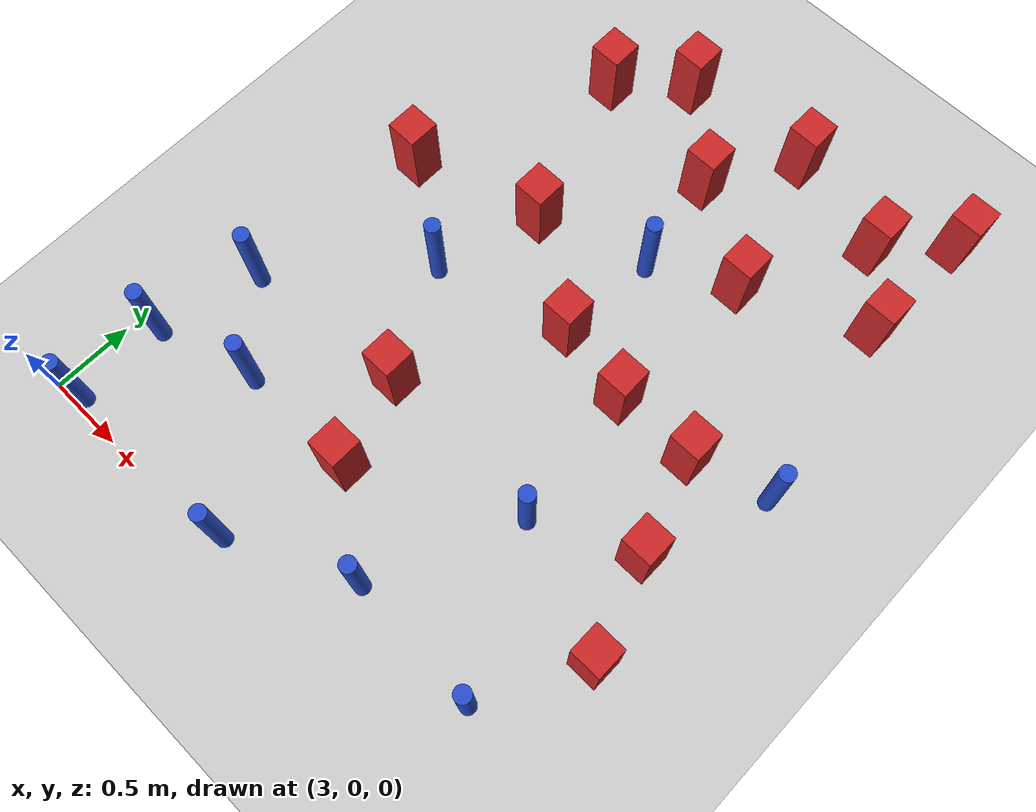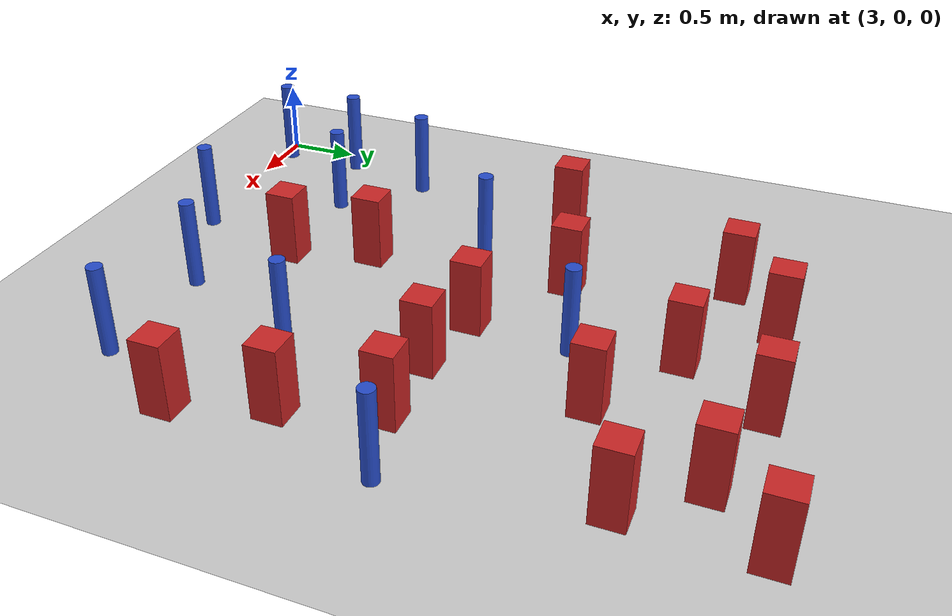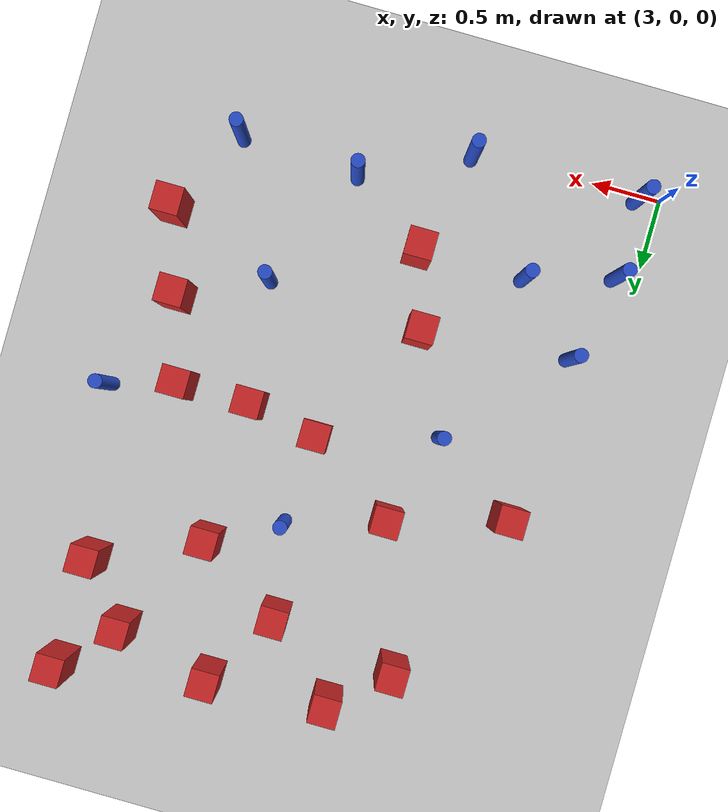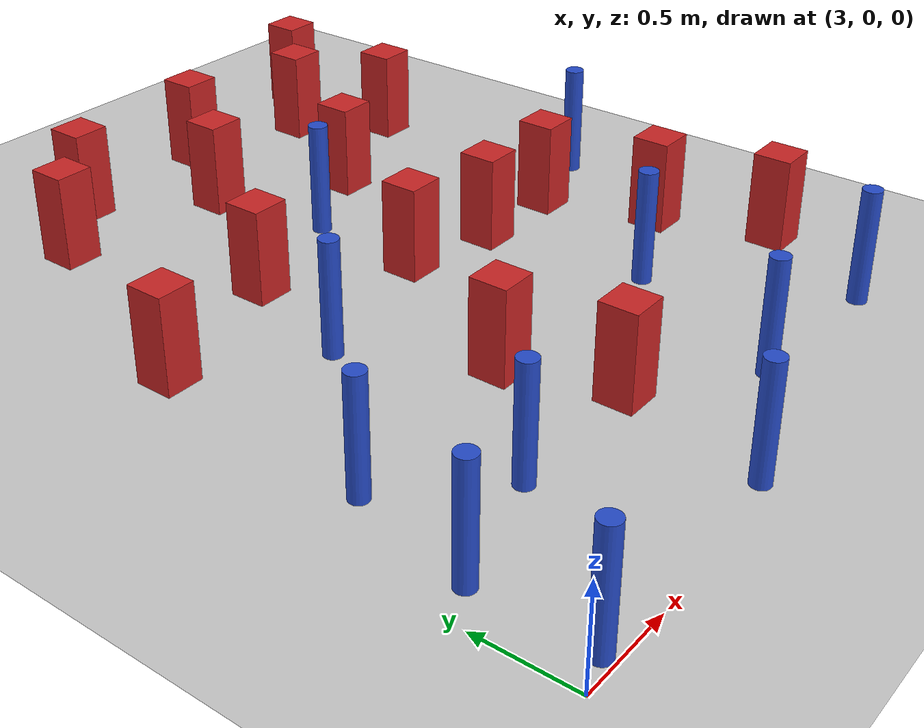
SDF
<sdf version="1.6">
 <world name="default">
  <model name="ground_plane">
   <static>1</static>
   <link name="link">
    <collision name="collision">
     <geometry><plane><normal>0 0 1</normal><size>100 100</size></plane></geometry>
     <surface><friction><ode><mu>100</mu><mu2>50</mu2></ode></friction></surface>
    </collision>
    <visual name="visual">
     <cast_shadows>0</cast_shadows>
     <geometry><plane><normal>0 0 1</normal><size>100 100</size></plane></geometry>
     <material>
      <ambient>1.0 1.0 1.0 1.0</ambient>
      <diffuse>0.8 0.8 0.8 1.0</diffuse>
      <specular>0.01 0.01 0.01 1.000000</specular>
     </material>
    </visual>
   </link>
  </model>
  <model name="square_post_obstacle2">
   <static>true</static>
   <pose>5.42452816976 2.19569135165 8.22691968438e-08 7.2212513382e-06 -7.54495500217e-07 2.29674213826e-05</pose>
   <link name="link">
    <pose>0 0 0.25 0 -0 0</pose>
    <inertial>
     <mass>100</mass>
     <inertia>
      <ixx>0.166667</ixx>
      <ixy>0</ixy>
      <ixz>0</ixz>
      <iyy>0.166667</iyy>
      <iyz>0</iyz>
      <izz>0.166667</izz>
     </inertia>
    </inertial>
    <collision name="collision"><geometry><box><size>.2 .2 .5</size></box></geometry></collision>
    <visual name="visual">
     <geometry><box><size>.2 .2 .5</size></box></geometry>
     <material>
      <script><name>Gazebo/Red</name><uri>file://media/materials/scripts/gazebo.material</uri></script>
     </material>
    </visual>
   </link>
  </model>
  <model name="square_post_obstacle24">
   <static>true</static>
   <pose>6.13321026635 1.60436506008 8.22691968438e-08 7.2212513382e-06 -7.54495500217e-07 2.29674213826e-05</pose>
   <link name="link">
    <pose>0 0 0.25 0 -0 0</pose>
    <inertial>
     <mass>100</mass>
     <inertia>
      <ixx>0.166667</ixx>
      <ixy>0</ixy>
      <ixz>0</ixz>
      <iyy>0.166667</iyy>
      <iyz>0</iyz>
      <izz>0.166667</izz>
     </inertia>
    </inertial>
    <collision name="collision"><geometry><box><size>.2 .2 .5</size></box></geometry></collision>
    <visual name="visual">
     <geometry><box><size>.2 .2 .5</size></box></geometry>
     <material>
      <script><name>Gazebo/Red</name><uri>file://media/materials/scripts/gazebo.material</uri></script>
     </material>
    </visual>
   </link>
  </model>
  <model name="pole_obstacle31">
   <static>true</static>
   <pose>4.07089895354 2.06847113455 2.88873142074e-08 -9.90536690245e-09 4.6021994898e-07 -1.20965994966e-07</pose>
   <link name="link">
    <pose>0 0 0.3 0 -0 0</pose>
    <inertial>
     <mass>1</mass>
     <inertia><ixx>0.145833</ixx><ixy>0</ixy><ixz>0</ixz><iyy>0.145833</iyy><iyz>0</iyz><izz>0.125</izz></inertia>
    </inertial>
    <collision name="collision">
     <geometry><cylinder><radius>0.05</radius><length>.6</length></cylinder></geometry>
    </collision>
    <visual name="visual">
     <geometry><cylinder><radius>0.05</radius><length>.6</length></cylinder></geometry>
     <material>
      <script><name>Gazebo/Blue</name><uri>file://media/materials/scripts/gazebo.material</uri></script>
     </material>
    </visual>
   </link>
  </model>
  <model name="square_post_obstacle40">
   <static>true</static>
   <pose>5.19070985868 4.13557711693 8.22691968438e-08 7.2212513382e-06 -7.54495500217e-07 2.29674213826e-05</pose>
   <link name="link">
    <pose>0 0 0.25 0 -0 0</pose>
    <inertial>
     <mass>100</mass>
     <inertia>
      <ixx>0.166667</ixx>
      <ixy>0</ixy>
      <ixz>0</ixz>
      <iyy>0.166667</iyy>
      <iyz>0</iyz>
      <izz>0.166667</izz>
     </inertia>
    </inertial>
    <collision name="collision"><geometry><box><size>.2 .2 .5</size></box></geometry></collision>
    <visual name="visual">
     <geometry><box><size>.2 .2 .5</size></box></geometry>
     <material>
      <script><name>Gazebo/Red</name><uri>file://media/materials/scripts/gazebo.material</uri></script>
     </material>
    </visual>
   </link>
  </model>
  <model name="pole_obstacle44">
   <static>true</static>
   <pose>4.96932050137 2.94581779017 2.88873142074e-08 -9.90536690245e-09 4.6021994898e-07 -1.20965994966e-07</pose>
   <link name="link">
    <pose>0 0 0.3 0 -0 0</pose>
    <inertial>
     <mass>1</mass>
     <inertia><ixx>0.145833</ixx><ixy>0</ixy><ixz>0</ixz><iyy>0.145833</iyy><iyz>0</iyz><izz>0.125</izz></inertia>
    </inertial>
    <collision name="collision">
     <geometry><cylinder><radius>0.05</radius><length>.6</length></cylinder></geometry>
    </collision>
    <visual name="visual">
     <geometry><cylinder><radius>0.05</radius><length>.6</length></cylinder></geometry>
     <material>
      <script><name>Gazebo/Blue</name><uri>file://media/materials/scripts/gazebo.material</uri></script>
     </material>
    </visual>
   </link>
  </model>
  <model name="pole_obstacle52">
   <static>true</static>
   <pose>5.13855170718 0.432871785088 2.88873142074e-08 -9.90536689981e-09 4.60219948986e-07 -1.20965994962e-07</pose>
   <link name="link">
    <pose>0 0 0.3 0 -0 0</pose>
    <inertial>
     <mass>1</mass>
     <inertia><ixx>0.145833</ixx><ixy>0</ixy><ixz>0</ixz><iyy>0.145833</iyy><iyz>0</iyz><izz>0.125</izz></inertia>
    </inertial>
    <collision name="collision">
     <geometry><cylinder><radius>0.05</radius><length>.6</length></cylinder></geometry>
    </collision>
    <visual name="visual">
     <geometry><cylinder><radius>0.05</radius><length>.6</length></cylinder></geometry>
     <material>
      <script><name>Gazebo/Blue</name><uri>file://media/materials/scripts/gazebo.material</uri></script>
     </material>
    </visual>
   </link>
  </model>
  <model name="pole_obstacle55">
   <static>true</static>
   <pose>3.18216989485 0.0603079932442 2.88873142074e-08 -9.905366921e-09 4.60219948936e-07 -1.20965994985e-07</pose>
   <link name="link">
    <pose>0 0 0.3 0 -0 0</pose>
    <inertial>
     <mass>1</mass>
     <inertia><ixx>0.145833</ixx><ixy>0</ixy><ixz>0</ixz><iyy>0.145833</iyy><iyz>0</iyz><izz>0.125</izz></inertia>
    </inertial>
    <collision name="collision">
     <geometry><cylinder><radius>0.05</radius><length>.6</length></cylinder></geometry>
    </collision>
    <visual name="visual">
     <geometry><cylinder><radius>0.05</radius><length>.6</length></cylinder></geometry>
     <material>
      <script><name>Gazebo/Blue</name><uri>file://media/materials/scripts/gazebo.material</uri></script>
     </material>
    </visual>
   </link>
  </model>
  <model name="pole_obstacle67">
   <static>true</static>
   <pose>4.3924977545 0.0814848977877 2.88873142074e-08 -9.90536689727e-09 4.60219948992e-07 -1.20965994958e-07</pose>
   <link name="link">
    <pose>0 0 0.3 0 -0 0</pose>
    <inertial>
     <mass>1</mass>
     <inertia><ixx>0.145833</ixx><ixy>0</ixy><ixz>0</ixz><iyy>0.145833</iyy><iyz>0</iyz><izz>0.125</izz></inertia>
    </inertial>
    <collision name="collision">
     <geometry><cylinder><radius>0.05</radius><length>.6</length></cylinder></geometry>
    </collision>
    <visual name="visual">
     <geometry><cylinder><radius>0.05</radius><length>.6</length></cylinder></geometry>
     <material>
      <script><name>Gazebo/Blue</name><uri>file://media/materials/scripts/gazebo.material</uri></script>
     </material>
    </visual>
   </link>
  </model>
  <model name="square_post_obstacle74">
   <static>true</static>
   <pose>3.461943655 2.49100299854 8.22691968438e-08 7.2212513382e-06 -7.54495500217e-07 2.29674213826e-05</pose>
   <link name="link">
    <pose>0 0 0.25 0 -0 0</pose>
    <inertial>
     <mass>100</mass>
     <inertia>
      <ixx>0.166667</ixx>
      <ixy>0</ixy>
      <ixz>0</ixz>
      <iyy>0.166667</iyy>
      <iyz>0</iyz>
      <izz>0.166667</izz>
     </inertia>
    </inertial>
    <collision name="collision"><geometry><box><size>.2 .2 .5</size></box></geometry></collision>
    <visual name="visual">
     <geometry><box><size>.2 .2 .5</size></box></geometry>
     <material>
      <script><name>Gazebo/Red</name><uri>file://media/materials/scripts/gazebo.material</uri></script>
     </material>
    </visual>
   </link>
  </model>
  <model name="pole_obstacle69">
   <static>true</static>
   <pose>5.5354633923 1.32193531988 2.88873142074e-08 -9.90536689445e-09 4.60219948999e-07 -1.20965994956e-07</pose>
   <link name="link">
    <pose>0 0 0.3 0 -0 0</pose>
    <inertial>
     <mass>1</mass>
     <inertia><ixx>0.145833</ixx><ixy>0</ixy><ixz>0</ixz><iyy>0.145833</iyy><iyz>0</iyz><izz>0.125</izz></inertia>
    </inertial>
    <collision name="collision">
     <geometry><cylinder><radius>0.05</radius><length>.6</length></cylinder></geometry>
    </collision>
    <visual name="visual">
     <geometry><cylinder><radius>0.05</radius><length>.6</length></cylinder></geometry>
     <material>
      <script><name>Gazebo/Blue</name><uri>file://media/materials/scripts/gazebo.material</uri></script>
     </material>
    </visual>
   </link>
  </model>
  <model name="pole_obstacle93">
   <static>true</static>
   <pose>3.33888164342 1.28178777815 2.88873142074e-08 -9.90536689395e-09 4.60219949e-07 -1.20965994953e-07</pose>
   <link name="link">
    <pose>0 0 0.3 0 -0 0</pose>
    <inertial>
     <mass>1</mass>
     <inertia><ixx>0.145833</ixx><ixy>0</ixy><ixz>0</ixz><iyy>0.145833</iyy><iyz>0</iyz><izz>0.125</izz></inertia>
    </inertial>
    <collision name="collision">
     <geometry><cylinder><radius>0.05</radius><length>.6</length></cylinder></geometry>
    </collision>
    <visual name="visual">
     <geometry><cylinder><radius>0.05</radius><length>.6</length></cylinder></geometry>
     <material>
      <script><name>Gazebo/Blue</name><uri>file://media/materials/scripts/gazebo.material</uri></script>
     </material>
    </visual>
   </link>
  </model>
  <model name="square_post_obstacle100">
   <static>true</static>
   <pose>5.87621217486 3.95748839276 8.22691968438e-08 7.2212513382e-06 -7.54495500217e-07 2.29674213826e-05</pose>
   <link name="link">
    <pose>0 0 0.25 0 -0 0</pose>
    <inertial>
     <mass>100</mass>
     <inertia>
      <ixx>0.166667</ixx>
      <ixy>0</ixy>
      <ixz>0</ixz>
      <iyy>0.166667</iyy>
      <iyz>0</iyz>
      <izz>0.166667</izz>
     </inertia>
    </inertial>
    <collision name="collision"><geometry><box><size>.2 .2 .5</size></box></geometry></collision>
    <visual name="visual">
     <geometry><box><size>.2 .2 .5</size></box></geometry>
     <material>
      <script><name>Gazebo/Red</name><uri>file://media/materials/scripts/gazebo.material</uri></script>
     </material>
    </visual>
   </link>
  </model>
  <model name="square_post_obstacle105">
   <static>true</static>
   <pose>3.95324624561 3.74492532458 8.22691968438e-08 7.22125133819e-06 -7.54495500217e-07 2.29674213826e-05</pose>
   <link name="link">
    <pose>0 0 0.25 0 -0 0</pose>
    <inertial>
     <mass>100</mass>
     <inertia>
      <ixx>0.166667</ixx>
      <ixy>0</ixy>
      <ixz>0</ixz>
      <iyy>0.166667</iyy>
      <iyz>0</iyz>
      <izz>0.166667</izz>
     </inertia>
    </inertial>
    <collision name="collision"><geometry><box><size>.2 .2 .5</size></box></geometry></collision>
    <visual name="visual">
     <geometry><box><size>.2 .2 .5</size></box></geometry>
     <material>
      <script><name>Gazebo/Red</name><uri>file://media/materials/scripts/gazebo.material</uri></script>
     </material>
    </visual>
   </link>
  </model>
  <model name="square_post_obstacle111">
   <static>true</static>
   <pose>4.8522514457 3.5968656837 8.22691968438e-08 7.2212513382e-06 -7.54495500217e-07 2.29674213826e-05</pose>
   <link name="link">
    <pose>0 0 0.25 0 -0 0</pose>
    <inertial>
     <mass>100</mass>
     <inertia>
      <ixx>0.166667</ixx>
      <ixy>0</ixy>
      <ixz>0</ixz>
      <iyy>0.166667</iyy>
      <iyz>0</iyz>
      <izz>0.166667</izz>
     </inertia>
    </inertial>
    <collision name="collision"><geometry><box><size>.2 .2 .5</size></box></geometry></collision>
    <visual name="visual">
     <geometry><box><size>.2 .2 .5</size></box></geometry>
     <material>
      <script><name>Gazebo/Red</name><uri>file://media/materials/scripts/gazebo.material</uri></script>
     </material>
    </visual>
   </link>
  </model>
  <model name="pole_obstacle123">
   <static>true</static>
   <pose>6.0009472885 0.389909035583 2.88873142074e-08 -9.90536689981e-09 4.60219948986e-07 -1.20965994962e-07</pose>
   <link name="link">
    <pose>0 0 0.3 0 -0 0</pose>
    <inertial>
     <mass>1</mass>
     <inertia><ixx>0.145833</ixx><ixy>0</ixy><ixz>0</ixz><iyy>0.145833</iyy><iyz>0</iyz><izz>0.125</izz></inertia>
    </inertial>
    <collision name="collision">
     <geometry><cylinder><radius>0.05</radius><length>.6</length></cylinder></geometry>
    </collision>
    <visual name="visual">
     <geometry><cylinder><radius>0.05</radius><length>.6</length></cylinder></geometry>
     <material>
      <script><name>Gazebo/Blue</name><uri>file://media/materials/scripts/gazebo.material</uri></script>
     </material>
    </visual>
   </link>
  </model>
  <model name="pole_obstacle126">
   <static>true</static>
   <pose>3.80904709088 0.821524208412 2.88873142074e-08 -9.90536689285e-09 4.60219949002e-07 -1.20965994953e-07</pose>
   <link name="link">
    <pose>0 0 0.3 0 -0 0</pose>
    <inertial>
     <mass>1</mass>
     <inertia><ixx>0.145833</ixx><ixy>0</ixy><ixz>0</ixz><iyy>0.145833</iyy><iyz>0</iyz><izz>0.125</izz></inertia>
    </inertial>
    <collision name="collision">
     <geometry><cylinder><radius>0.05</radius><length>.6</length></cylinder></geometry>
    </collision>
    <visual name="visual">
     <geometry><cylinder><radius>0.05</radius><length>.6</length></cylinder></geometry>
     <material>
      <script><name>Gazebo/Blue</name><uri>file://media/materials/scripts/gazebo.material</uri></script>
     </material>
    </visual>
   </link>
  </model>
  <model name="square_post_obstacle122">
   <static>true</static>
   <pose>4.33973639325 4.07967168282 8.22691968438e-08 7.22125133819e-06 -7.54495500217e-07 2.29674213826e-05</pose>
   <link name="link">
    <pose>0 0 0.25 0 -0 0</pose>
    <inertial>
     <mass>100</mass>
     <inertia>
      <ixx>0.166667</ixx>
      <ixy>0</ixy>
      <ixz>0</ixz>
      <iyy>0.166667</iyy>
      <iyz>0</iyz>
      <izz>0.166667</izz>
     </inertia>
    </inertial>
    <collision name="collision"><geometry><box><size>.2 .2 .5</size></box></geometry></collision>
    <visual name="visual">
     <geometry><box><size>.2 .2 .5</size></box></geometry>
     <material>
      <script><name>Gazebo/Red</name><uri>file://media/materials/scripts/gazebo.material</uri></script>
     </material>
    </visual>
   </link>
  </model>
  <model name="pole_obstacle144">
   <static>true</static>
   <pose>6.43157653221 2.33684050891 2.88873142074e-08 -9.90536690245e-09 4.6021994898e-07 -1.20965994966e-07</pose>
   <link name="link">
    <pose>0 0 0.3 0 -0 0</pose>
    <inertial>
     <mass>1</mass>
     <inertia><ixx>0.145833</ixx><ixy>0</ixy><ixz>0</ixz><iyy>0.145833</iyy><iyz>0</iyz><izz>0.125</izz></inertia>
    </inertial>
    <collision name="collision">
     <geometry><cylinder><radius>0.05</radius><length>.6</length></cylinder></geometry>
    </collision>
    <visual name="visual">
     <geometry><cylinder><radius>0.05</radius><length>.6</length></cylinder></geometry>
     <material>
      <script><name>Gazebo/Blue</name><uri>file://media/materials/scripts/gazebo.material</uri></script>
     </material>
    </visual>
   </link>
  </model>
  <model name="square_post_obstacle137">
   <static>true</static>
   <pose>6.32609797704 1.01060081362 8.22691968438e-08 7.2212513382e-06 -7.54495500217e-07 2.29674213826e-05</pose>
   <link name="link">
    <pose>0 0 0.25 0 -0 0</pose>
    <inertial>
     <mass>100</mass>
     <inertia>
      <ixx>0.166667</ixx>
      <ixy>0</ixy>
      <ixz>0</ixz>
      <iyy>0.166667</iyy>
      <iyz>0</iyz>
      <izz>0.166667</izz>
     </inertia>
    </inertial>
    <collision name="collision"><geometry><box><size>.2 .2 .5</size></box></geometry></collision>
    <visual name="visual">
     <geometry><box><size>.2 .2 .5</size></box></geometry>
     <material>
      <script><name>Gazebo/Red</name><uri>file://media/materials/scripts/gazebo.material</uri></script>
     </material>
    </visual>
   </link>
  </model>
  <model name="square_post_obstacle141">
   <static>true</static>
   <pose>4.91946181122 2.295462702 8.22691968438e-08 7.2212513382e-06 -7.54495500217e-07 2.29674213826e-05</pose>
   <link name="link">
    <pose>0 0 0.25 0 -0 0</pose>
    <inertial>
     <mass>100</mass>
     <inertia>
      <ixx>0.166667</ixx>
      <ixy>0</ixy>
      <ixz>0</ixz>
      <iyy>0.166667</iyy>
      <iyz>0</iyz>
      <izz>0.166667</izz>
     </inertia>
    </inertial>
    <collision name="collision"><geometry><box><size>.2 .2 .5</size></box></geometry></collision>
    <visual name="visual">
     <geometry><box><size>.2 .2 .5</size></box></geometry>
     <material>
      <script><name>Gazebo/Red</name><uri>file://media/materials/scripts/gazebo.material</uri></script>
     </material>
    </visual>
   </link>
  </model>
  <model name="square_post_obstacle143">
   <static>true</static>
   <pose>6.21233833512 3.54451154343 8.22691968438e-08 7.2212513382e-06 -7.54495500217e-07 2.29674213826e-05</pose>
   <link name="link">
    <pose>0 0 0.25 0 -0 0</pose>
    <inertial>
     <mass>100</mass>
     <inertia>
      <ixx>0.166667</ixx>
      <ixy>0</ixy>
      <ixz>0</ixz>
      <iyy>0.166667</iyy>
      <iyz>0</iyz>
      <izz>0.166667</izz>
     </inertia>
    </inertial>
    <collision name="collision"><geometry><box><size>.2 .2 .5</size></box></geometry></collision>
    <visual name="visual">
     <geometry><box><size>.2 .2 .5</size></box></geometry>
     <material>
      <script><name>Gazebo/Red</name><uri>file://media/materials/scripts/gazebo.material</uri></script>
     </material>
    </visual>
   </link>
  </model>
  <model name="square_post_obstacle153">
   <static>true</static>
   <pose>4.41264451042 1.38249066521 8.22691968438e-08 7.2212513382e-06 -7.54495500217e-07 2.29674213826e-05</pose>
   <link name="link">
    <pose>0 0 0.25 0 -0 0</pose>
    <inertial>
     <mass>100</mass>
     <inertia>
      <ixx>0.166667</ixx>
      <ixy>0</ixy>
      <ixz>0</ixz>
      <iyy>0.166667</iyy>
      <iyz>0</iyz>
      <izz>0.166667</izz>
     </inertia>
    </inertial>
    <collision name="collision"><geometry><box><size>.2 .2 .5</size></box></geometry></collision>
    <visual name="visual">
     <geometry><box><size>.2 .2 .5</size></box></geometry>
     <material>
      <script><name>Gazebo/Red</name><uri>file://media/materials/scripts/gazebo.material</uri></script>
     </material>
    </visual>
   </link>
  </model>
  <model name="pole_obstacle163">
   <static>true</static>
   <pose>3.18180727874 0.63970030288 2.88873142074e-08 -9.90536689285e-09 4.60219949002e-07 -1.20965994953e-07</pose>
   <link name="link">
    <pose>0 0 0.3 0 -0 0</pose>
    <inertial>
     <mass>1</mass>
     <inertia><ixx>0.145833</ixx><ixy>0</ixy><ixz>0</ixz><iyy>0.145833</iyy><iyz>0</iyz><izz>0.125</izz></inertia>
    </inertial>
    <collision name="collision">
     <geometry><cylinder><radius>0.05</radius><length>.6</length></cylinder></geometry>
    </collision>
    <visual name="visual">
     <geometry><cylinder><radius>0.05</radius><length>.6</length></cylinder></geometry>
     <material>
      <script><name>Gazebo/Blue</name><uri>file://media/materials/scripts/gazebo.material</uri></script>
     </material>
    </visual>
   </link>
  </model>
  <model name="square_post_obstacle171">
   <static>true</static>
   <pose>4.57852084991 0.831977192021 8.22691968438e-08 7.2212513382e-06 -7.54495500217e-07 2.29674213826e-05</pose>
   <link name="link">
    <pose>0 0 0.25 0 -0 0</pose>
    <inertial>
     <mass>100</mass>
     <inertia>
      <ixx>0.166667</ixx>
      <ixy>0</ixy>
      <ixz>0</ixz>
      <iyy>0.166667</iyy>
      <iyz>0</iyz>
      <izz>0.166667</izz>
     </inertia>
    </inertial>
    <collision name="collision"><geometry><box><size>.2 .2 .5</size></box></geometry></collision>
    <visual name="visual">
     <geometry><box><size>.2 .2 .5</size></box></geometry>
     <material>
      <script><name>Gazebo/Red</name><uri>file://media/materials/scripts/gazebo.material</uri></script>
     </material>
    </visual>
   </link>
  </model>
  <model name="square_post_obstacle186">
   <static>true</static>
   <pose>5.94499727921 2.19768831897 8.22691968438e-08 7.2212513382e-06 -7.54495500217e-07 2.29674213826e-05</pose>
   <link name="link">
    <pose>0 0 0.25 0 -0 0</pose>
    <inertial>
     <mass>100</mass>
     <inertia>
      <ixx>0.166667</ixx>
      <ixy>0</ixy>
      <ixz>0</ixz>
      <iyy>0.166667</iyy>
      <iyz>0</iyz>
      <izz>0.166667</izz>
     </inertia>
    </inertial>
    <collision name="collision"><geometry><box><size>.2 .2 .5</size></box></geometry></collision>
    <visual name="visual">
     <geometry><box><size>.2 .2 .5</size></box></geometry>
     <material>
      <script><name>Gazebo/Red</name><uri>file://media/materials/scripts/gazebo.material</uri></script>
     </material>
    </visual>
   </link>
  </model>
  <model name="square_post_obstacle187">
   <static>true</static>
   <pose>5.45963194454 3.20699398888 8.22691968438e-08 7.2212513382e-06 -7.54495500217e-07 2.29674213826e-05</pose>
   <link name="link">
    <pose>0 0 0.25 0 -0 0</pose>
    <inertial>
     <mass>100</mass>
     <inertia>
      <ixx>0.166667</ixx>
      <ixy>0</ixy>
      <ixz>0</ixz>
      <iyy>0.166667</iyy>
      <iyz>0</iyz>
      <izz>0.166667</izz>
     </inertia>
    </inertial>
    <collision name="collision"><geometry><box><size>.2 .2 .5</size></box></geometry></collision>
    <visual name="visual">
     <geometry><box><size>.2 .2 .5</size></box></geometry>
     <material>
      <script><name>Gazebo/Red</name><uri>file://media/materials/scripts/gazebo.material</uri></script>
     </material>
    </visual>
   </link>
  </model>
  <model name="square_post_obstacle200">
   <static>true</static>
   <pose>6.23295790837 4.32398792737 8.22691968438e-08 7.2212513382e-06 -7.54495500217e-07 2.29674213826e-05</pose>
   <link name="link">
    <pose>0 0 0.25 0 -0 0</pose>
    <inertial>
     <mass>100</mass>
     <inertia>
      <ixx>0.166667</ixx>
      <ixy>0</ixy>
      <ixz>0</ixz>
      <iyy>0.166667</iyy>
      <iyz>0</iyz>
      <izz>0.166667</izz>
     </inertia>
    </inertial>
    <collision name="collision"><geometry><box><size>.2 .2 .5</size></box></geometry></collision>
    <visual name="visual">
     <geometry><box><size>.2 .2 .5</size></box></geometry>
     <material>
      <script><name>Gazebo/Red</name><uri>file://media/materials/scripts/gazebo.material</uri></script>
     </material>
    </visual>
   </link>
  </model>
  <model name="square_post_obstacle214">
   <static>true</static>
   <pose>4.2828495669 2.7265260031 8.22691968438e-08 7.2212513382e-06 -7.54495500217e-07 2.29674213826e-05</pose>
   <link name="link">
    <pose>0 0 0.25 0 -0 0</pose>
    <inertial>
     <mass>100</mass>
     <inertia>
      <ixx>0.166667</ixx>
      <ixy>0</ixy>
      <ixz>0</ixz>
      <iyy>0.166667</iyy>
      <iyz>0</iyz>
      <izz>0.166667</izz>
     </inertia>
    </inertial>
    <collision name="collision"><geometry><box><size>.2 .2 .5</size></box></geometry></collision>
    <visual name="visual">
     <geometry><box><size>.2 .2 .5</size></box></geometry>
     <material>
      <script><name>Gazebo/Red</name><uri>file://media/materials/scripts/gazebo.material</uri></script>
     </material>
    </visual>
   </link>
  </model>
 </world>
</sdf>
